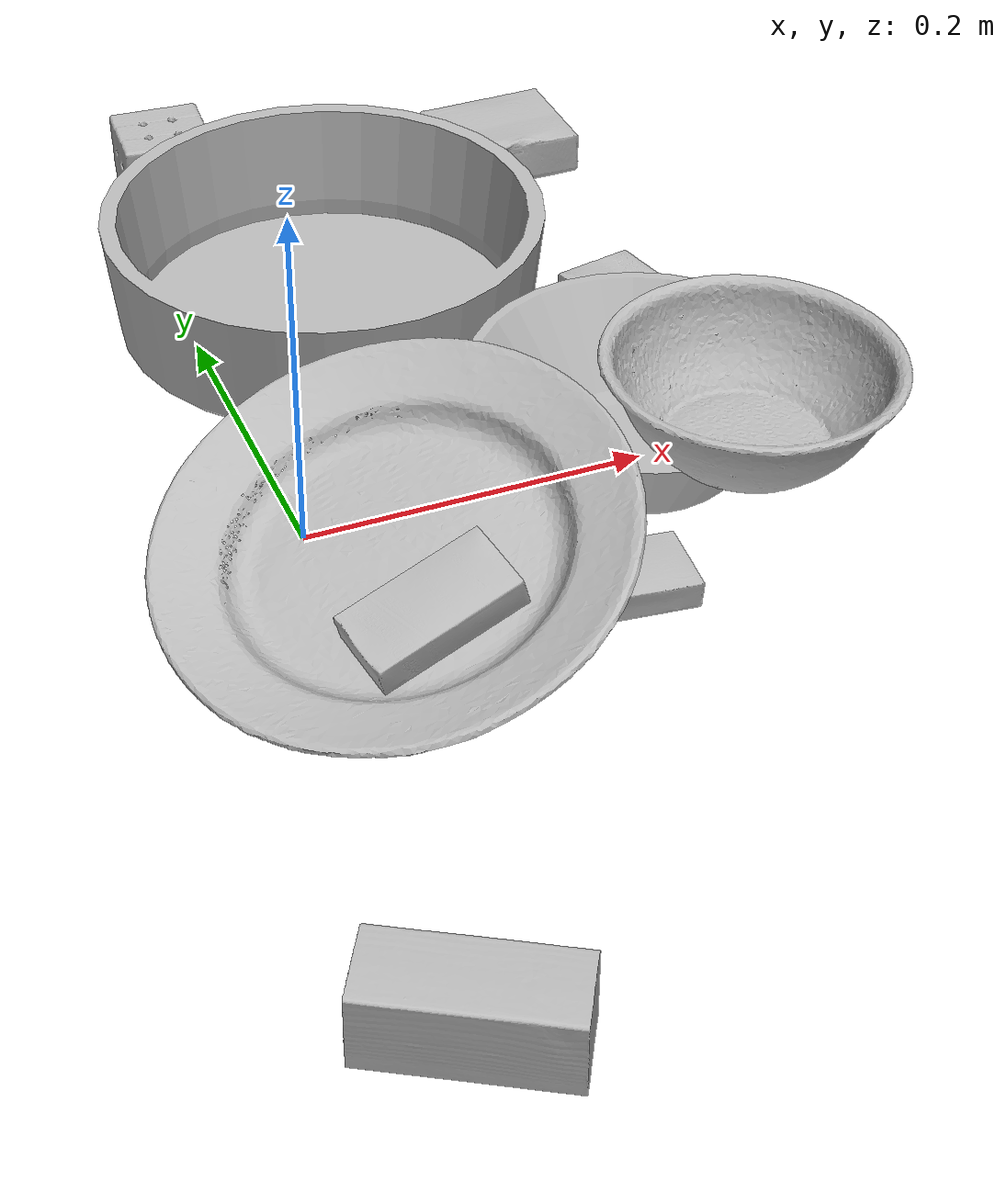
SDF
<sdf version="1.4">
  <world name="default">
    <light name="light1" type="point">
      <pose>0 0 1 0 0 0</pose>
      <diffuse>3 3 3 1</diffuse>
      <specular>3 3 3 1</specular>
    </light>
    <light name="light2" type="point">
      <pose>0 0.5 2 0 0 0</pose>
      <diffuse>1 1 1 1</diffuse>
      <specular>1 1 1 1</specular>
    </light>
    <light name="light3" type="point">
      <pose>0 0.5 2 0 0 0</pose>
      <diffuse>3 3 3 1</diffuse>
      <specular>3 3 3 1</specular>
    </light>
    <scene>
      <ambient>0.7 0.7 0.7</ambient>
    </scene>
    <model name="box1">
      <link name="link_box1">
        <collision name="default">
          <geometry>
            <mesh>
              <uri>model://gelatin_box/collision_meshes/collision.obj</uri>
              <scale>1.0 1.0 1.0</scale>
            </mesh>
          </geometry>
          <surface>
            <friction>
              <ode>
                <mu>0.5</mu>
                <mu2>0.5</mu2>
              </ode>
            </friction>
          <contact>
        <ode>
            <max_vel>0</max_vel>
            <min_depth>0.0001</min_depth>
            <kp>1e8</kp>
        </ode>
    </contact></surface>
        </collision>
        <visual name="default">
          <geometry>
            <mesh>
              <uri>model://gelatin_box/visual_meshes/visual.dae</uri>
              <scale>1.0 1.0 1.0</scale>
            </mesh>
          </geometry>
        </visual>
        <inertial>
          <mass>0.24885821342468262</mass>
          <pose>0.0004319618456065655 0.00011156872642459348 -0.0003640321083366871 -0.0010503721884538221 -0.004755817759936981 0.016440553883063976</pose>
          <inertia>
            <ixx>0.0001756736</ixx>
            <iyy>0.00012548274</iyy>
            <izz>0.00026741438</izz>
            <ixy>0</ixy>
            <ixz>0</ixz>
            <iyz>0</iyz>
          </inertia>
        </inertial>
      </link>
      <pose>0.2550700604915619 0.3434318006038666 0.01516831573098898 0.005597390214255894 -0.007304560512184053 -1.571329678327609</pose>
    </model>
    <model name="box11">
      <link name="link_box11">
        <collision name="default">
          <geometry>
            <mesh>
              <uri>model://pudding_box/collision_meshes/collision.obj</uri>
              <scale>0.5 0.5 0.5</scale>
            </mesh>
          </geometry>
          <surface>
            <friction>
              <ode>
                <mu>0.5</mu>
                <mu2>0.5</mu2>
              </ode>
            </friction>
          <contact>
        <ode>
            <max_vel>0</max_vel>
            <min_depth>0.0001</min_depth>
            <kp>1e8</kp>
        </ode>
    </contact></surface>
        </collision>
        <visual name="default">
          <geometry>
            <mesh>
              <uri>model://pudding_box/visual_meshes/visual.dae</uri>
              <scale>0.5 0.5 0.5</scale>
            </mesh>
          </geometry>
        </visual>
        <inertial>
          <mass>0.031047143042087555</mass>
          <pose>0.00024474109522998333 0.00040339428232982755 -0.0002594413817860186 0.005213102716306955 -0.006603798272123425 0.020079828883677098</pose>
          <inertia>
            <ixx>8.774299e-06</ixx>
            <iyy>5.903411e-06</iyy>
            <izz>1.2957546e-05</izz>
            <ixy>0</ixy>
            <ixz>0</ixz>
            <iyz>0</iyz>
          </inertia>
        </inertial>
      </link>
      <pose>0.1491962969303131 -0.10818235576152802 0.009862905368208885 0.022348516306126942 -0.011391786476101784 1.4973236145890034</pose>
    </model>
    <model name="box2">
      <link name="link_box2">
        <collision name="default">
          <geometry>
            <mesh>
              <uri>model://rubiks_cube/collision_meshes/collision.obj</uri>
              <scale>1.0 1.0 1.0</scale>
            </mesh>
          </geometry>
          <surface>
            <friction>
              <ode>
                <mu>0.5</mu>
                <mu2>0.5</mu2>
              </ode>
            </friction>
          <contact>
        <ode>
            <max_vel>0</max_vel>
            <min_depth>0.0001</min_depth>
            <kp>1e8</kp>
        </ode>
    </contact></surface>
        </collision>
        <visual name="default">
          <geometry>
            <mesh>
              <uri>model://rubiks_cube/visual_meshes/visual.dae</uri>
              <scale>1.0 1.0 1.0</scale>
            </mesh>
          </geometry>
        </visual>
        <inertial>
          <mass>0.2106715589761734</mass>
          <pose>2.6721041649580002e-05 5.2569666877388954e-05 -7.264316536748083e-06 -0.05467273700930805 -0.09814071961497198 -0.03445608496414611</pose>
          <inertia>
            <ixx>0.0001164102</ixx>
            <iyy>0.000115867326</iyy>
            <izz>0.00011737483</izz>
            <ixy>0</ixy>
            <ixz>0</ixz>
            <iyz>0</iyz>
          </inertia>
        </inertial>
      </link>
      <pose>0.029757844284176826 0.36712712049484253 0.028679000213742256 -1.863460210575329e-06 4.890137387853181e-07 1.479239981717246</pose>
    </model>
    <model name="box21">
      <link name="link_box21">
        <collision name="default">
          <geometry>
            <mesh>
              <uri>model://wood_block/collision_meshes/collision.obj</uri>
              <scale>0.5 0.5 0.5</scale>
            </mesh>
          </geometry>
          <surface>
            <friction>
              <ode>
                <mu>0.5</mu>
                <mu2>0.5</mu2>
              </ode>
            </friction>
          <contact>
        <ode>
            <max_vel>0</max_vel>
            <min_depth>0.0001</min_depth>
            <kp>1e8</kp>
        </ode>
    </contact></surface>
        </collision>
        <visual name="default">
          <geometry>
            <mesh>
              <uri>model://wood_block/visual_meshes/visual.dae</uri>
              <scale>0.5 0.5 0.5</scale>
            </mesh>
          </geometry>
        </visual>
        <inertial>
          <mass>0.146076962351799</mass>
          <pose>-2.9066577553749084e-06 -0.000285404734313488 0.00013204291462898254 -0.052208177866913126 -0.0051926955252411455 -0.006861378006552687</pose>
          <inertia>
            <ixx>4.8868267e-05</ixx>
            <iyy>0.00015437487</iyy>
            <izz>0.00015379742</izz>
            <ixy>0</ixy>
            <ixz>0</ixz>
            <iyz>0</iyz>
          </inertia>
        </inertial>
      </link>
      <pose>-0.04470479488372803 -0.3548867404460907 0.0226292684674263 -0.005208394116873824 0.005718701874209834 2.617912046341913</pose>
    </model>
    <model name="box3">
      <link name="link_box3">
        <collision name="default">
          <geometry>
            <mesh>
              <uri>model://cracker_box/collision_meshes/collision.obj</uri>
              <scale>0.25 0.25 0.25</scale>
            </mesh>
          </geometry>
          <surface>
            <friction>
              <ode>
                <mu>0.5</mu>
                <mu2>0.5</mu2>
              </ode>
            </friction>
          <contact>
        <ode>
            <max_vel>0</max_vel>
            <min_depth>0.0001</min_depth>
            <kp>1e8</kp>
        </ode>
    </contact></surface>
        </collision>
        <visual name="default">
          <geometry>
            <mesh>
              <uri>model://cracker_box/visual_meshes/visual.dae</uri>
              <scale>0.25 0.25 0.25</scale>
            </mesh>
          </geometry>
        </visual>
        <inertial>
          <mass>0.0398951955139637</mass>
          <pose>0.0002366032567806542 6.358561950037256e-05 -0.0004257383698131889 -0.00031620768741309833 -0.011106487737478729 0.0025467957005107203</pose>
          <inertia>
            <ixx>6.342223e-06</ixx>
            <iyy>1.0472255e-05</iyy>
            <izz>1.494487e-05</izz>
            <ixy>0</ixy>
            <ixz>0</ixz>
            <iyz>0</iyz>
          </inertia>
        </inertial>
      </link>
      <pose>0.253718763589859 0.15657483041286469 0.009120448492467403 -0.01178804767869197 -0.007367123837137114 -2.9095172804986635</pose>
    </model>
    <model name="box31">
      <link name="link_box31">
        <collision name="default">
          <geometry>
            <mesh>
              <uri>model://sugar_box/collision_meshes/collision.obj</uri>
              <scale>0.5 0.5 0.5</scale>
            </mesh>
          </geometry>
          <surface>
            <friction>
              <ode>
                <mu>0.5</mu>
                <mu2>0.5</mu2>
              </ode>
            </friction>
          <contact>
        <ode>
            <max_vel>0</max_vel>
            <min_depth>0.0001</min_depth>
            <kp>1e8</kp>
        </ode>
    </contact></surface>
        </collision>
        <visual name="default">
          <geometry>
            <mesh>
              <uri>model://sugar_box/visual_meshes/visual.dae</uri>
              <scale>0.5 0.5 0.5</scale>
            </mesh>
          </geometry>
        </visual>
        <inertial>
          <mass>0.051384337246418</mass>
          <pose>0.0005171863595023751 1.924554817378521e-05 -0.00018182402709499002 -0.00040462574757428057 0.0010506634050244472 0.0026153787892360275</pose>
          <inertia>
            <ixx>1.070332e-05</ixx>
            <iyy>3.4595334e-05</iyy>
            <izz>4.1414743e-05</izz>
            <ixy>0</ixy>
            <ixz>0</ixz>
            <iyz>0</iyz>
          </inertia>
        </inertial>
      </link>
      <pose>0.029282651841640472 -0.11627702414989471 0.031499721109867096 0.13536720301804608 -0.3051283725513051 0.12973955593596945</pose>
    </model>
    <model name="plate1">
      <link name="link_plate1">
        <collision name="default">
          <geometry>
            <mesh>
              <uri>model://plate/collision_meshes/collision.obj</uri>
              <scale>1.0 1.0 1.0</scale>
            </mesh>
          </geometry>
          <surface>
            <friction>
              <ode>
                <mu>0.5</mu>
                <mu2>0.5</mu2>
              </ode>
            </friction>
          <contact>
        <ode>
            <max_vel>0</max_vel>
            <min_depth>0.0001</min_depth>
            <kp>1e8</kp>
        </ode>
    </contact></surface>
        </collision>
        <visual name="default">
          <geometry>
            <mesh>
              <uri>model://plate/visual_meshes/visual.dae</uri>
              <scale>1.0 1.0 1.0</scale>
            </mesh>
          </geometry>
        </visual>
        <inertial>
          <mass>0.18845537304878235</mass>
          <pose>-0.0006044640904292464 0.00027825849247165024 -0.0010561994276940823 0.0022188128524267426 -0.0032254640251278745 0.45260123674794867</pose>
          <inertia>
            <ixx>0.0008815983</ixx>
            <iyy>0.00087316614</iyy>
            <izz>0.001724274</izz>
            <ixy>0</ixy>
            <ixz>0</ixz>
            <iyz>0</iyz>
          </inertia>
        </inertial>
      </link>
      <pose>0.02764354832470417 -0.07055401802062988 0.03813923895359039 0.01876510883629648 -0.3244566033479188 0.5308957366935838</pose>
    </model>
    <model name="bowl1">
      <link name="link_bowl1">
        <collision name="default">
          <geometry>
            <mesh>
              <uri>model://bowl_a/collision_meshes/collision.obj</uri>
              <scale>1.0 1.0 1.0</scale>
            </mesh>
          </geometry>
          <surface>
            <friction>
              <ode>
                <mu>0.5</mu>
                <mu2>0.5</mu2>
              </ode>
            </friction>
          <contact>
        <ode>
            <max_vel>0</max_vel>
            <min_depth>0.0001</min_depth>
            <kp>1e8</kp>
        </ode>
    </contact></surface>
        </collision>
        <visual name="default">
          <geometry>
            <mesh>
              <uri>model://bowl_a/visual_meshes/visual.dae</uri>
              <scale>1.0 1.0 1.0</scale>
            </mesh>
          </geometry>
        </visual>
        <inertial>
          <mass>0.46761196851730347</mass>
          <pose>0.0002786737459246069 4.731199442176148e-05 -0.0013765295734629035 -0.0009805421566516771 -0.0010938164969012795 -0.19123134440759623</pose>
          <inertia>
            <ixx>0.0013313128</ixx>
            <iyy>0.0013394863</iyy>
            <izz>0.0023677913</izz>
            <ixy>0</ixy>
            <ixz>0</ixz>
            <iyz>0</iyz>
          </inertia>
        </inertial>
      </link>
      <pose>0.20018143951892853 0.001318562775850296 0.030383046716451645 -6.103060627712516e-06 -1.2995077763539031e-06 2.663955349262235</pose>
    </model>
    <model name="plate2">
      <link name="link_plate2">
        <collision name="default">
          <geometry>
            <mesh>
              <uri>model://pan_tefal/collision_meshes/collision.obj</uri>
              <scale>1.0 1.0 1.0</scale>
            </mesh>
          </geometry>
          <surface>
            <friction>
              <ode>
                <mu>0.5</mu>
                <mu2>0.5</mu2>
              </ode>
            </friction>
          <contact>
        <ode>
            <max_vel>0</max_vel>
            <min_depth>0.0001</min_depth>
            <kp>1e8</kp>
        </ode>
    </contact></surface>
        </collision>
        <visual name="default">
          <geometry>
            <mesh>
              <uri>model://pan_tefal/visual_meshes/visual.dae</uri>
              <scale>1.0 1.0 1.0</scale>
            </mesh>
          </geometry>
        </visual>
        <inertial>
          <mass>0.7360396385192871</mass>
          <pose>-0.00018002057913690805 3.2791922421893105e-05 -0.00851493515074253 0.0008190284364517867 -0.0003301440136962699 -0.3318532577359739</pose>
          <inertia>
            <ixx>0.0050808466</ixx>
            <iyy>0.005113603</iyy>
            <izz>0.00935286</izz>
            <ixy>0</ixy>
            <ixz>0</ixz>
            <iyz>0</iyz>
          </inertia>
        </inertial>
      </link>
      <pose>0.08327116817235947 0.20162877440452576 0.03805001452565193 6.243616924974302e-09 -3.633566181495911e-10 -1.8959544607295618</pose>
    </model>
    <model name="bowl2">
      <link name="link_bowl2">
        <collision name="default">
          <geometry>
            <mesh>
              <uri>model://bowl/collision_meshes/collision.obj</uri>
              <scale>1.0 1.0 1.0</scale>
            </mesh>
          </geometry>
          <surface>
            <friction>
              <ode>
                <mu>0.5</mu>
                <mu2>0.5</mu2>
              </ode>
            </friction>
          <contact>
        <ode>
            <max_vel>0</max_vel>
            <min_depth>0.0001</min_depth>
            <kp>1e8</kp>
        </ode>
    </contact></surface>
        </collision>
        <visual name="default">
          <geometry>
            <mesh>
              <uri>model://bowl/visual_meshes/visual.dae</uri>
              <scale>1.0 1.0 1.0</scale>
            </mesh>
          </geometry>
        </visual>
        <inertial>
          <mass>0.11974068731069565</mass>
          <pose>0.00020445311383809894 -0.0010302052833139896 -0.0008042640401981771 -0.015764214972767723 0.014546668027170537 0.7140316235505751</pose>
          <inertia>
            <ixx>0.00027505384</ixx>
            <iyy>0.000268908</iyy>
            <izz>0.00046273507</izz>
            <ixy>0</ixy>
            <ixz>0</ixz>
            <iyz>0</iyz>
          </inertia>
        </inertial>
      </link>
      <pose>0.22030726075172424 -0.08295849710702896 0.08826079964637756 0.004297067058074597 0.018867038625069162 -1.0247119501340327</pose>
    </model>
  <physics type="ode">
      <max_contacts>50</max_contacts>
      <ode>
        <solver>
          <type>quick</type>
          <iters>75</iters>
        </solver>
        <constraints>
          <contact_max_correcting_vel>0</contact_max_correcting_vel>
          <contact_surface_layer>0</contact_surface_layer>
        </constraints>
      </ode>
    </physics></world>
</sdf>
